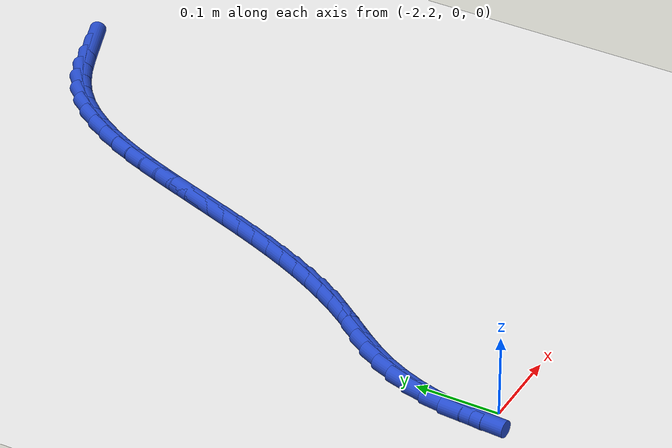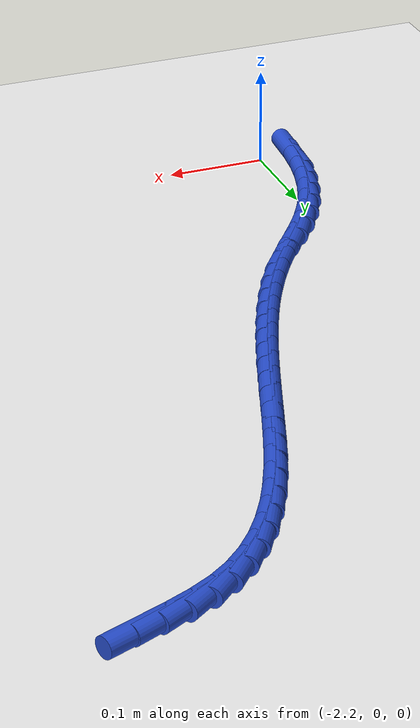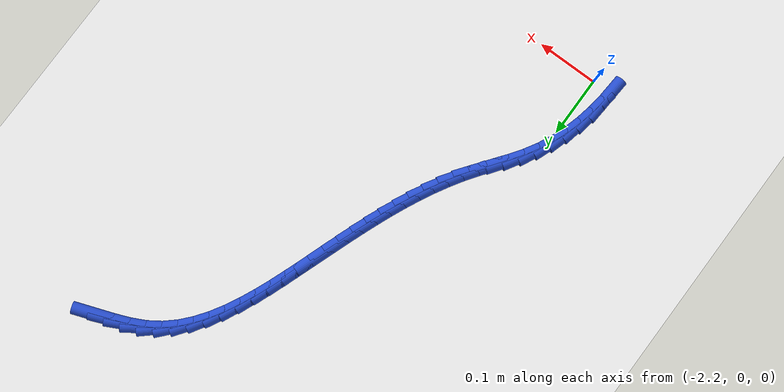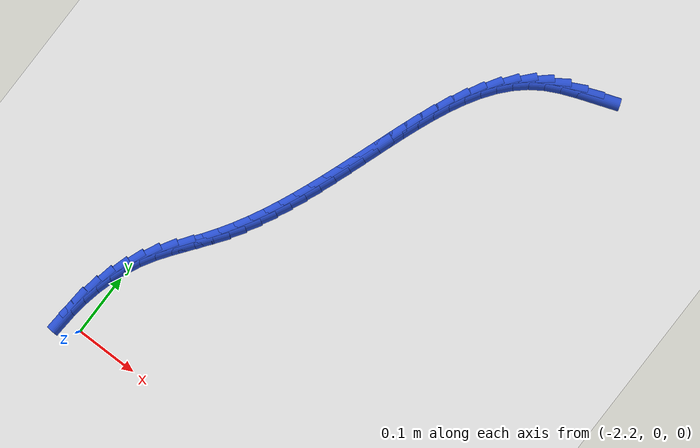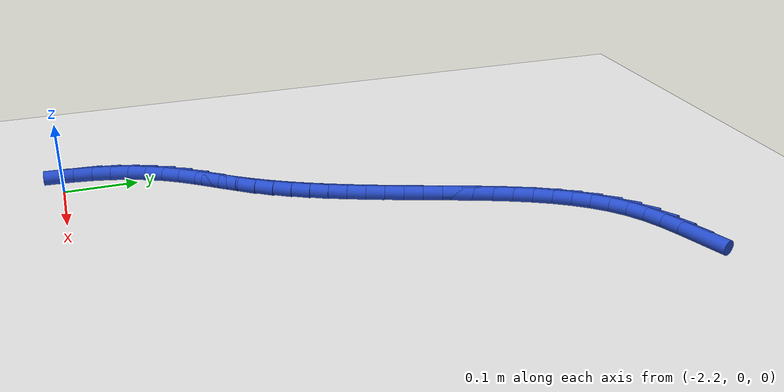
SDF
<sdf version="1.6">
 <world name="default">
  <model name="ground_plane">
   <static>1</static>
   <link name="link">
    <collision name="collision">
     <geometry><plane><normal>0 0 1</normal><size>100 100</size></plane></geometry>
     <surface><friction><ode><mu>100</mu><mu2>50</mu2></ode></friction></surface>
    </collision>
    <visual name="visual">
     <cast_shadows>0</cast_shadows>
     <geometry><plane><normal>0 0 1</normal><size>100 100</size></plane></geometry>
     <material>
      <script><uri>file://media/materials/scripts/gazebo.material</uri><name>Gazebo/WhiteGlow</name></script>
     </material>
    </visual>
   </link>
  </model>
  <model name="line">
   <link name="link_106">
    <pose>-1.8063774217779163 0.7462042834302652 0.01 0 1.57 0.3517734935831269</pose>
    <collision name="collision">
     <geometry><cylinder><radius>0.01</radius><length>0.08</length></cylinder></geometry>
    </collision>
    <visual name="visual">
     <material>
      <script><name>Gazebo/Blue</name><uri>file://media/materials/scripts/gazebo.material</uri></script>
     </material>
     <geometry><cylinder><radius>0.01</radius><length>0.08</length></cylinder></geometry>
    </visual>
   </link>
   <link name="link_107">
    <pose>-1.8308008393249071 0.7372399219489494 0.01 0 1.57 0.3917798363574748</pose>
    <collision name="collision">
     <geometry><cylinder><radius>0.01</radius><length>0.08</length></cylinder></geometry>
    </collision>
    <visual name="visual">
     <material>
      <script><name>Gazebo/Blue</name><uri>file://media/materials/scripts/gazebo.material</uri></script>
     </material>
     <geometry><cylinder><radius>0.01</radius><length>0.08</length></cylinder></geometry>
    </visual>
   </link>
   <link name="link_108">
    <pose>-1.8544888264288346 0.7274535378058263 0.01 0 1.57 0.4744991581940029</pose>
    <collision name="collision">
     <geometry><cylinder><radius>0.01</radius><length>0.08</length></cylinder></geometry>
    </collision>
    <visual name="visual">
     <material>
      <script><name>Gazebo/Blue</name><uri>file://media/materials/scripts/gazebo.material</uri></script>
     </material>
     <geometry><cylinder><radius>0.01</radius><length>0.08</length></cylinder></geometry>
    </visual>
   </link>
   <link name="link_109">
    <pose>-1.876792806990599 0.715997344117287 0.01 0 1.57 0.6000223751540087</pose>
    <collision name="collision">
     <geometry><cylinder><radius>0.01</radius><length>0.08</length></cylinder></geometry>
    </collision>
    <visual name="visual">
     <material>
      <script><name>Gazebo/Blue</name><uri>file://media/materials/scripts/gazebo.material</uri></script>
     </material>
     <geometry><cylinder><radius>0.01</radius><length>0.08</length></cylinder></geometry>
    </visual>
   </link>
   <link name="link_110">
    <pose>-1.8971154951038751 0.7020931775709264 0.01 0 1.57 0.7331713796512953</pose>
    <collision name="collision">
     <geometry><cylinder><radius>0.01</radius><length>0.08</length></cylinder></geometry>
    </collision>
    <visual name="visual">
     <material>
      <script><name>Gazebo/Blue</name><uri>file://media/materials/scripts/gazebo.material</uri></script>
     </material>
     <geometry><cylinder><radius>0.01</radius><length>0.08</length></cylinder></geometry>
    </visual>
   </link>
   <link name="link_111">
    <pose>-1.915368512014333 0.6856536878814691 0.01 0 1.57 0.8503769119503752</pose>
    <collision name="collision">
     <geometry><cylinder><radius>0.01</radius><length>0.08</length></cylinder></geometry>
    </collision>
    <visual name="visual">
     <material>
      <script><name>Gazebo/Blue</name><uri>file://media/materials/scripts/gazebo.material</uri></script>
     </material>
     <geometry><cylinder><radius>0.01</radius><length>0.08</length></cylinder></geometry>
    </visual>
   </link>
   <link name="link_112">
    <pose>-1.9317545909361384 0.6669866929969839 0.01 0 1.57 0.9497801186858563</pose>
    <collision name="collision">
     <geometry><cylinder><radius>0.01</radius><length>0.08</length></cylinder></geometry>
    </collision>
    <visual name="visual">
     <material>
      <script><name>Gazebo/Blue</name><uri>file://media/materials/scripts/gazebo.material</uri></script>
     </material>
     <geometry><cylinder><radius>0.01</radius><length>0.08</length></cylinder></geometry>
    </visual>
   </link>
   <link name="link_113">
    <pose>-1.9464798890966604 0.6464046587721695 0.01 0 1.57 1.0317066424072525</pose>
    <collision name="collision">
     <geometry><cylinder><radius>0.01</radius><length>0.08</length></cylinder></geometry>
    </collision>
    <visual name="visual">
     <material>
      <script><name>Gazebo/Blue</name><uri>file://media/materials/scripts/gazebo.material</uri></script>
     </material>
     <geometry><cylinder><radius>0.01</radius><length>0.08</length></cylinder></geometry>
    </visual>
   </link>
   <link name="link_114">
    <pose>-1.959750563723267 0.6242200510617258 0.01 0 1.57 1.0974884202933126</pose>
    <collision name="collision">
     <geometry><cylinder><radius>0.01</radius><length>0.08</length></cylinder></geometry>
    </collision>
    <visual name="visual">
     <material>
      <script><name>Gazebo/Blue</name><uri>file://media/materials/scripts/gazebo.material</uri></script>
     </material>
     <geometry><cylinder><radius>0.01</radius><length>0.08</length></cylinder></geometry>
    </visual>
   </link>
   <link name="link_115">
    <pose>-1.9717727720433291 0.6007453357203519 0.01 0 1.57 1.1487473952507599</pose>
    <collision name="collision">
     <geometry><cylinder><radius>0.01</radius><length>0.08</length></cylinder></geometry>
    </collision>
    <visual name="visual">
     <material>
      <script><name>Gazebo/Blue</name><uri>file://media/materials/scripts/gazebo.material</uri></script>
     </material>
     <geometry><cylinder><radius>0.01</radius><length>0.08</length></cylinder></geometry>
    </visual>
   </link>
   <link name="link_116">
    <pose>-1.9827526712842138 0.5762929786027465 0.01 0 1.57 1.1869743125665744</pose>
    <collision name="collision">
     <geometry><cylinder><radius>0.01</radius><length>0.08</length></cylinder></geometry>
    </collision>
    <visual name="visual">
     <material>
      <script><name>Gazebo/Blue</name><uri>file://media/materials/scripts/gazebo.material</uri></script>
     </material>
     <geometry><cylinder><radius>0.01</radius><length>0.08</length></cylinder></geometry>
    </visual>
   </link>
   <link name="link_117">
    <pose>-1.9928964186732911 0.5511754455636085 0.01 0 1.57 1.2133201157861409</pose>
    <collision name="collision">
     <geometry><cylinder><radius>0.01</radius><length>0.08</length></cylinder></geometry>
    </collision>
    <visual name="visual">
     <material>
      <script><name>Gazebo/Blue</name><uri>file://media/materials/scripts/gazebo.material</uri></script>
     </material>
     <geometry><cylinder><radius>0.01</radius><length>0.08</length></cylinder></geometry>
    </visual>
   </link>
   <link name="link_118">
    <pose>-2.0024101714379285 0.5257052024576375 0.01 0 1.57 1.2285017058440941</pose>
    <collision name="collision">
     <geometry><cylinder><radius>0.01</radius><length>0.08</length></cylinder></geometry>
    </collision>
    <visual name="visual">
     <material>
      <script><name>Gazebo/Blue</name><uri>file://media/materials/scripts/gazebo.material</uri></script>
     </material>
     <geometry><cylinder><radius>0.01</radius><length>0.08</length></cylinder></geometry>
    </visual>
   </link>
   <link name="link_119">
    <pose>-2.0115000868054964 0.5001947151395325 0.01 0 1.57 1.233770367100228</pose>
    <collision name="collision">
     <geometry><cylinder><radius>0.01</radius><length>0.08</length></cylinder></geometry>
    </collision>
    <visual name="visual">
     <material>
      <script><name>Gazebo/Blue</name><uri>file://media/materials/scripts/gazebo.material</uri></script>
     </material>
     <geometry><cylinder><radius>0.01</radius><length>0.08</length></cylinder></geometry>
    </visual>
   </link>
   <link name="link_120">
    <pose>-2.0203589820920134 0.47491206149098114 0.01 0 1.57 1.2334741535821219</pose>
    <collision name="collision">
     <geometry><cylinder><radius>0.01</radius><length>0.08</length></cylinder></geometry>
    </collision>
    <visual name="visual">
     <material>
      <script><name>Gazebo/Blue</name><uri>file://media/materials/scripts/gazebo.material</uri></script>
     </material>
     <geometry><cylinder><radius>0.01</radius><length>0.08</length></cylinder></geometry>
    </visual>
   </link>
   <link name="link_121">
    <pose>-2.029120922585363 0.44992982458334635 0.01 0 1.57 1.2286841724515265</pose>
    <collision name="collision">
     <geometry><cylinder><radius>0.01</radius><length>0.08</length></cylinder></geometry>
    </collision>
    <visual name="visual">
     <material>
      <script><name>Gazebo/Blue</name><uri>file://media/materials/scripts/gazebo.material</uri></script>
     </material>
     <geometry><cylinder><radius>0.01</radius><length>0.08</length></cylinder></geometry>
    </visual>
   </link>
   <link name="link_122">
    <pose>-2.03790380396536 0.4252667838225926 0.01 0 1.57 1.2192599883764959</pose>
    <collision name="collision">
     <geometry><cylinder><radius>0.01</radius><length>0.08</length></cylinder></geometry>
    </collision>
    <visual name="visual">
     <material>
      <script><name>Gazebo/Blue</name><uri>file://media/materials/scripts/gazebo.material</uri></script>
     </material>
     <geometry><cylinder><radius>0.01</radius><length>0.08</length></cylinder></geometry>
    </visual>
   </link>
   <link name="link_123">
    <pose>-2.0468255214265634 0.4009417170000303 0.01 0 1.57 1.2050819900622467</pose>
    <collision name="collision">
     <geometry><cylinder><radius>0.01</radius><length>0.08</length></cylinder></geometry>
    </collision>
    <visual name="visual">
     <material>
      <script><name>Gazebo/Blue</name><uri>file://media/materials/scripts/gazebo.material</uri></script>
     </material>
     <geometry><cylinder><radius>0.01</radius><length>0.08</length></cylinder></geometry>
    </visual>
   </link>
   <link name="link_124">
    <pose>-2.0560039701635344 0.3769734019069687 0.01 0 1.57 1.1860599861397465</pose>
    <collision name="collision">
     <geometry><cylinder><radius>0.01</radius><length>0.08</length></cylinder></geometry>
    </collision>
    <visual name="visual">
     <material>
      <script><name>Gazebo/Blue</name><uri>file://media/materials/scripts/gazebo.material</uri></script>
     </material>
     <geometry><cylinder><radius>0.01</radius><length>0.08</length></cylinder></geometry>
    </visual>
   </link>
   <link name="link_125">
    <pose>-2.0655570453708325 0.3533806163347177 0.01 0 1.57 1.16214536307231</pose>
    <collision name="collision">
     <geometry><cylinder><radius>0.01</radius><length>0.08</length></cylinder></geometry>
    </collision>
    <visual name="visual">
     <material>
      <script><name>Gazebo/Blue</name><uri>file://media/materials/scripts/gazebo.material</uri></script>
     </material>
     <geometry><cylinder><radius>0.01</radius><length>0.08</length></cylinder></geometry>
    </visual>
   </link>
   <link name="link_126">
    <pose>-2.07560264224302 0.3301821380745866 0.01 0 1.57 1.1333466981714577</pose>
    <collision name="collision">
     <geometry><cylinder><radius>0.01</radius><length>0.08</length></cylinder></geometry>
    </collision>
    <visual name="visual">
     <material>
      <script><name>Gazebo/Blue</name><uri>file://media/materials/scripts/gazebo.material</uri></script>
     </material>
     <geometry><cylinder><radius>0.01</radius><length>0.08</length></cylinder></geometry>
    </visual>
   </link>
   <link name="link_127">
    <pose>-2.086258655974656 0.3073967449178859 0.01 0 1.57 1.0997480497432832</pose>
    <collision name="collision">
     <geometry><cylinder><radius>0.01</radius><length>0.08</length></cylinder></geometry>
    </collision>
    <visual name="visual">
     <material>
      <script><name>Gazebo/Blue</name><uri>file://media/materials/scripts/gazebo.material</uri></script>
     </material>
     <geometry><cylinder><radius>0.01</radius><length>0.08</length></cylinder></geometry>
    </visual>
   </link>
   <link name="link_128">
    <pose>-2.0976429817603015 0.2850432146559248 0.01 0 1.57 1.0615282721789119</pose>
    <collision name="collision">
     <geometry><cylinder><radius>0.01</radius><length>0.08</length></cylinder></geometry>
    </collision>
    <visual name="visual">
     <material>
      <script><name>Gazebo/Blue</name><uri>file://media/materials/scripts/gazebo.material</uri></script>
     </material>
     <geometry><cylinder><radius>0.01</radius><length>0.08</length></cylinder></geometry>
    </visual>
   </link>
   <link name="link_129">
    <pose>-2.1098735147945167 0.2631403250800133 0.01 0 1.57 1.018978685016092</pose>
    <collision name="collision">
     <geometry><cylinder><radius>0.01</radius><length>0.08</length></cylinder></geometry>
    </collision>
    <visual name="visual">
     <material>
      <script><name>Gazebo/Blue</name><uri>file://media/materials/scripts/gazebo.material</uri></script>
     </material>
     <geometry><cylinder><radius>0.01</radius><length>0.08</length></cylinder></geometry>
    </visual>
   </link>
   <link name="link_130">
    <pose>-2.1230681502718625 0.24170685398146083 0.01 0 1.57 0.9725374496567184</pose>
    <collision name="collision">
     <geometry><cylinder><radius>0.01</radius><length>0.08</length></cylinder></geometry>
    </collision>
    <visual name="visual">
     <material>
      <script><name>Gazebo/Blue</name><uri>file://media/materials/scripts/gazebo.material</uri></script>
     </material>
     <geometry><cylinder><radius>0.01</radius><length>0.08</length></cylinder></geometry>
    </visual>
   </link>
   <link name="link_131">
    <pose>-2.137344264420186 0.22076135310613546 0.01 0 1.57 0.9336339215407906</pose>
    <collision name="collision">
     <geometry><cylinder><radius>0.01</radius><length>0.08</length></cylinder></geometry>
    </collision>
    <visual name="visual">
     <material>
      <script><name>Gazebo/Blue</name><uri>file://media/materials/scripts/gazebo.material</uri></script>
     </material>
     <geometry><cylinder><radius>0.01</radius><length>0.08</length></cylinder></geometry>
    </visual>
   </link>
   <link name="link_132">
    <pose>-2.1525566680278123 0.2002080090215254 0.01 0 1.57 0.9305008101339193</pose>
    <collision name="collision">
     <geometry><cylinder><radius>0.01</radius><length>0.08</length></cylinder></geometry>
    </collision>
    <visual name="visual">
     <material>
      <script><name>Gazebo/Blue</name><uri>file://media/materials/scripts/gazebo.material</uri></script>
     </material>
     <geometry><cylinder><radius>0.01</radius><length>0.08</length></cylinder></geometry>
    </visual>
   </link>
   <link name="link_133">
    <pose>-2.167871630959279 0.179651101705299 0.01 0 1.57 0.9674904509149703</pose>
    <collision name="collision">
     <geometry><cylinder><radius>0.01</radius><length>0.08</length></cylinder></geometry>
    </collision>
    <visual name="visual">
     <material>
      <script><name>Gazebo/Blue</name><uri>file://media/materials/scripts/gazebo.material</uri></script>
     </material>
     <geometry><cylinder><radius>0.01</radius><length>0.08</length></cylinder></geometry>
    </visual>
   </link>
   <link name="link_134">
    <pose>-2.182343927678057 0.15864634727441826 0.01 0 1.57 1.0430745625527316</pose>
    <collision name="collision">
     <geometry><cylinder><radius>0.01</radius><length>0.08</length></cylinder></geometry>
    </collision>
    <visual name="visual">
     <material>
      <script><name>Gazebo/Blue</name><uri>file://media/materials/scripts/gazebo.material</uri></script>
     </material>
     <geometry><cylinder><radius>0.01</radius><length>0.08</length></cylinder></geometry>
    </visual>
   </link>
   <link name="link_135">
    <pose>-2.195088194968376 0.13678131758849815 0.01 0 1.57 1.1310637592570307</pose>
    <collision name="collision">
     <geometry><cylinder><radius>0.01</radius><length>0.08</length></cylinder></geometry>
    </collision>
    <visual name="visual">
     <material>
      <script><name>Gazebo/Blue</name><uri>file://media/materials/scripts/gazebo.material</uri></script>
     </material>
     <geometry><cylinder><radius>0.01</radius><length>0.08</length></cylinder></geometry>
    </visual>
   </link>
   <link name="link_136">
    <pose>-2.2058223886995103 0.11396464084556214 0.01 0 1.57 1.2152230333197076</pose>
    <collision name="collision">
     <geometry><cylinder><radius>0.01</radius><length>0.08</length></cylinder></geometry>
    </collision>
    <visual name="visual">
     <material>
      <script><name>Gazebo/Blue</name><uri>file://media/materials/scripts/gazebo.material</uri></script>
     </material>
     <geometry><cylinder><radius>0.01</radius><length>0.08</length></cylinder></geometry>
    </visual>
   </link>
   <link name="link_137">
    <pose>-2.2146138226087584 0.09029085608365565 0.01 0 1.57 1.2948029275850585</pose>
    <collision name="collision">
     <geometry><cylinder><radius>0.01</radius><length>0.08</length></cylinder></geometry>
    </collision>
    <visual name="visual">
     <material>
      <script><name>Gazebo/Blue</name><uri>file://media/materials/scripts/gazebo.material</uri></script>
     </material>
     <geometry><cylinder><radius>0.01</radius><length>0.08</length></cylinder></geometry>
    </visual>
   </link>
   <link name="link_138">
    <pose>-2.2215340777278323 0.06585677318216335 0.01 0 1.57 1.3695287902887185</pose>
    <collision name="collision">
     <geometry><cylinder><radius>0.01</radius><length>0.08</length></cylinder></geometry>
    </collision>
    <visual name="visual">
     <material>
      <script><name>Gazebo/Blue</name><uri>file://media/materials/scripts/gazebo.material</uri></script>
     </material>
     <geometry><cylinder><radius>0.01</radius><length>0.08</length></cylinder></geometry>
    </visual>
   </link>
   <link name="link_139">
    <pose>-2.226654735088445 0.040759202020469926 0.01 0 1.57 1.4393651275842578</pose>
    <collision name="collision">
     <geometry><cylinder><radius>0.01</radius><length>0.08</length></cylinder></geometry>
    </collision>
    <visual name="visual">
     <material>
      <script><name>Gazebo/Blue</name><uri>file://media/materials/scripts/gazebo.material</uri></script>
     </material>
     <geometry><cylinder><radius>0.01</radius><length>0.08</length></cylinder></geometry>
    </visual>
   </link>
   <link name="link_140">
    <pose>-2.2300473757223074 0.015094952477959632 0.01 0 1.57 1.5044593869633132</pose>
    <collision name="collision">
     <geometry><cylinder><radius>0.01</radius><length>0.08</length></cylinder></geometry>
    </collision>
    <visual name="visual">
     <material>
      <script><name>Gazebo/Blue</name><uri>file://media/materials/scripts/gazebo.material</uri></script>
     </material>
     <geometry><cylinder><radius>0.01</radius><length>0.08</length></cylinder></geometry>
    </visual>
   </link>
  </model>
 </world>
</sdf>
